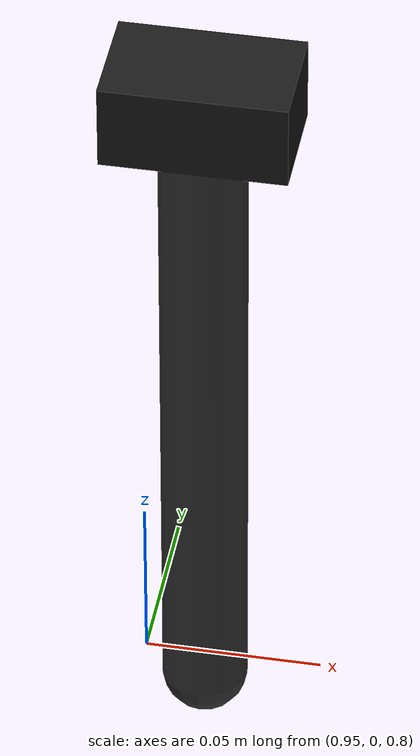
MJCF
<mujoco>
  <worldbody>
    <!-- CAMERA 1: "UP" VIEW (top-down-ish angle) -->
    <body name="tripod_base_up" pos="0.970 -0.017 0.810">
      <!-- Tripod leg (simplified as single pole) -->
      <geom type="capsule"
            fromto="0 0 0  0 0 0.20"
            size="0.012"
            rgba="0.2 0.2 0.2 1"
            contype="0"
            conaffinity="0"/>

      <!-- Camera mount body (at top of tripod) -->
      <body name="camera_mount_up" pos="0 0 0.20">
        <!-- Small camera body representation (2.5cm cube) -->
        <geom type="box"
              size="0.025 0.015 0.012"
              rgba="0.1 0.1 0.1 1"
              contype="0"
              conaffinity="0"/>

        <camera name="c920"
                mode="fixed"
                fovy="43"
                pos="0 0 0"
                xyaxes="0.030 1.000 0.000  -0.700 0.021 0.713"/>

        <site name="c920_optical_center"
              pos="0 0 0"
              rgba="0 0 1 0.5"
              size="0.003"
              type="sphere"/>
      </body>
    </body>
  </worldbody>
</mujoco>
